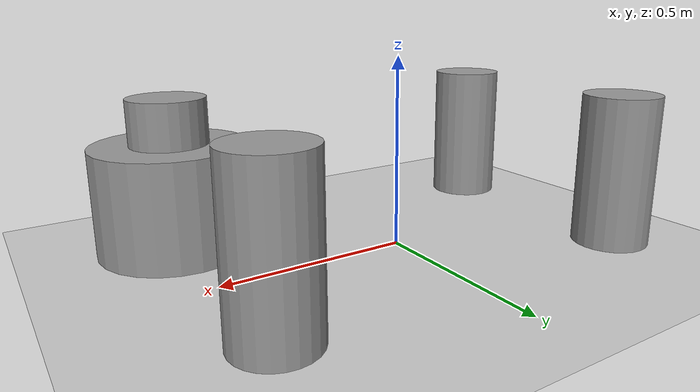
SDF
<?xml version="1.0" ?>
<sdf version="1.6">
  <world name="cylinder_world">

    <!-- Include the ground plane -->
    <include>
      <uri>model://ground_plane</uri>
    </include>

    <!-- Include the sun for lighting -->
    <include>
      <uri>model://sun</uri>
    </include>

    <!-- Define four static cylinders -->
    <model name="cylinder_1">
      <static>true</static>
      <pose>0.5 0.3 0.20 0 0 0</pose>
      <link name="link">
        <inertial>
          <mass>0.001</mass>
          <inertia>
            <ixx>1e-6</ixx>
            <iyy>1e-6</iyy>
            <izz>1e-6</izz>
            <ixy>0</ixy>
            <ixz>0</ixz>
            <iyz>0</iyz>
          </inertia>
        </inertial>
        <collision name="collision">
          <geometry>
            <cylinder>
              <radius>0.1</radius>
              <length>0.40</length>
            </cylinder>
          </geometry>
        </collision>
        <visual name="visual">
          <geometry>
            <cylinder>
              <radius>0.1</radius>
              <length>0.40</length>
            </cylinder>
          </geometry>
          <material>
            <ambient>0.0 0.0 1.0 1</ambient>
            <diffuse>0.6 0.6 0.6 1</diffuse>
          </material>
        </visual>
      </link>
    </model>

    <model name="cylinder_2">
      <static>true</static>
      <pose>-0.5 0.3 0.20 0 0 0</pose>
      <link name="link">
        <inertial>
          <mass>0.001</mass>
          <inertia>
            <ixx>1e-6</ixx>
            <iyy>1e-6</iyy>
            <izz>1e-6</izz>
            <ixy>0</ixy>
            <ixz>0</ixz>
            <iyz>0</iyz>
          </inertia>
        </inertial>
        <collision name="collision">
          <geometry>
            <cylinder>
              <radius>0.1</radius>
              <length>0.40</length>
            </cylinder>
          </geometry>
        </collision>
        <visual name="visual">
          <geometry>
            <cylinder>
              <radius>0.1</radius>
              <length>0.40</length>
            </cylinder>
          </geometry>
          <material>
            <ambient>0.0 0.0 1.0 1</ambient>
            <diffuse>0.6 0.6 0.6 1</diffuse>
          </material>
        </visual>
      </link>
    </model>

    <model name="cylinder_3">
      <static>true</static>
      <pose>0.5 -0.3 0.20 0 0 0</pose>
      <link name="link">
        <inertial>
          <mass>0.001</mass>
          <inertia>
            <ixx>1e-6</ixx>
            <iyy>1e-6</iyy>
            <izz>1e-6</izz>
            <ixy>0</ixy>
            <ixz>0</ixz>
            <iyz>0</iyz>
          </inertia>
        </inertial>
        <collision name="collision">
          <geometry>
            <cylinder>
              <radius>0.1</radius>
              <length>0.40</length>
            </cylinder>
          </geometry>
        </collision>
        <visual name="visual">
          <geometry>
            <cylinder>
              <radius>0.1</radius>
              <length>0.40</length>
            </cylinder>
          </geometry>
          <material>
            <ambient>0.0 0.0 1.0 1</ambient>
            <diffuse>0.6 0.6 0.6 1</diffuse>
          </material>
        </visual>
      </link>
    </model>

    <model name="cylinder_3_small">
      <static>true</static>
      <pose>0.5 -0.3 0.14 0 0 0</pose>
      <link name="link">
        <inertial>
          <mass>0.001</mass>
          <inertia>
            <ixx>1e-6</ixx>
            <iyy>1e-6</iyy>
            <izz>1e-6</izz>
            <ixy>0</ixy>
            <ixz>0</ixz>
            <iyz>0</iyz>
          </inertia>
        </inertial>
        <collision name="collision">
          <geometry>
            <cylinder>
              <radius>0.2</radius>
              <length>0.28</length>
            </cylinder>
          </geometry>
        </collision>
        <visual name="visual">
          <geometry>
            <cylinder>
              <radius>0.2</radius>
              <length>0.28</length>
            </cylinder>
          </geometry>
          <material>
            <ambient>0.0 0.0 1.0 1</ambient>
            <diffuse>0.6 0.6 0.6 1</diffuse>
          </material>
        </visual>
      </link>
    </model>

    <model name="cylinder_4">
      <static>true</static>
      <pose>-0.5 -0.3 0.20 0 0 0</pose>
      <link name="link">
        <inertial>
          <mass>0.001</mass>
          <inertia>
            <ixx>1e-6</ixx>
            <iyy>1e-6</iyy>
            <izz>1e-6</izz>
            <ixy>0</ixy>
            <ixz>0</ixz>
            <iyz>0</iyz>
          </inertia>
        </inertial>
        <collision name="collision">
          <geometry>
            <cylinder>
              <radius>0.1</radius>
              <length>0.40</length>
            </cylinder>
          </geometry>
        </collision>
        <visual name="visual">
          <geometry>
            <cylinder>
              <radius>0.1</radius>
              <length>0.40</length>
            </cylinder>
          </geometry>
          <material>
            <ambient>0.0 0.0 1.0 1</ambient>
            <diffuse>0.6 0.6 0.6 1</diffuse>
          </material>
        </visual>
      </link>
    </model>
    <scene>
        <shadows>0</shadows>
    </scene>
    <physics type='ode'>
      <max_step_size>0.001</max_step_size> <!-- Smaller = more accurate, but slower -->
      <real_time_update_rate>1000</real_time_update_rate> <!-- Targeted simulation updates per second -->
    </physics>
  </world>
</sdf>
